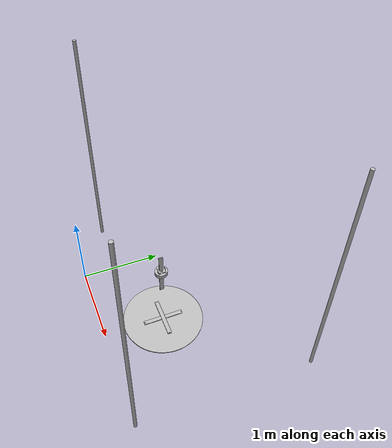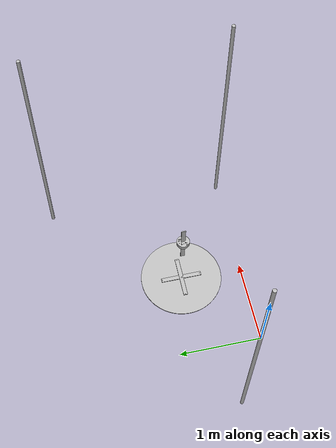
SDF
<?xml version="1.0" ?>
<sdf version="1.6">
	<model name="theClaw">
		<link name="theClaw">
			<self_collide>false</self_collide>
			<pose frame="">0.9961374409318946 0.7465137106501407 0.9145853035421722 0.0 -0.0 0.0</pose>
			<inertial>
				<pose frame="">0.0 0.0 0.0 0 0 0</pose>
				<mass>2.1850906238956522</mass>
				<inertia>
					<ixx>3.0499605924633575</ixx>
					<ixy>-1.6249506698617342</ixy>
					<ixz>-1.4915860235354594</ixz>
					<iyy>4.00041051149521</iyy>
					<iyz>-1.9908220858218477</iyz>
					<izz>3.3913989680828767</izz>
				</inertia>
			</inertial>
			<collision name="theClaw_collision">
				<geometry>
					<mesh>
						<uri>model://theClaw/meshes/CAD/theClaw.stl</uri>
						<scale>0.001 0.001 0.001</scale>
					</mesh>
				</geometry>
			</collision>
			<visual name="theClaw_visual">
				<geometry>
					<mesh>
						<uri>model://theClaw/meshes/CAD/theClaw.stl</uri>
						<scale>0.001 0.001 0.001</scale>
					</mesh>
				</geometry>
			</visual>
		</link>
		<link name="base">
			<self_collide>false</self_collide>
			<pose frame="">1.2271690794387753 0.87 0.0 0.0 -0.0 0.0</pose>
			<inertial>
				<pose frame="">0.0 0.0 0.0 0 0 0</pose>
				<mass>150.43516421714438</mass>
				<inertia>
					<ixx>451.0022383783446</ixx>
					<ixy>-179.0291338501403</ixy>
					<ixz>-116.09093953388212</ixz>
					<iyy>633.607548598436</iyy>
					<iyz>-163.73296758724786</iyz>
					<izz>551.9172263837241</izz>
				</inertia>
			</inertial>
			<collision name="base_collision">
				<geometry>
					<mesh>
						<uri>model://theClaw/meshes/CAD/base.stl</uri>
						<scale>0.001 0.001 0.001</scale>
					</mesh>
				</geometry>
			</collision>
			<visual name="base_visual">
				<geometry>
					<mesh>
						<uri>model://theClaw/meshes/CAD/base.stl</uri>
						<scale>0.001 0.001 0.001</scale>
					</mesh>
				</geometry>
			</visual>
		</link>
		<link name="link2">
			<self_collide>false</self_collide>
			<pose frame="">0.9950000150139188 0.7499959379681213 0.8804603417730599 0.0 -0.0 0.0</pose>
			<inertial>
				<pose frame="">0.0 0.0 0.0 0 0 0</pose>
				<mass>0.3322371208930956</mass>
				<inertia>
					<ixx>0.4528859132012393</ixx>
					<ixy>-0.24793061240442454</ixy>
					<ixz>-0.21939005021271807</ixz>
					<iyy>0.594874622399814</iyy>
					<iyz>-0.2910590052691696</iyz>
					<izz>0.5158734638345004</izz>
				</inertia>
			</inertial>
			<collision name="link2_collision">
				<geometry>
					<mesh>
						<uri>model://theClaw/meshes/CAD/link2.stl</uri>
						<scale>0.001 0.001 0.001</scale>
					</mesh>
				</geometry>
			</collision>
			<visual name="link2_visual">
				<geometry>
					<mesh>
						<uri>model://theClaw/meshes/CAD/link2.stl</uri>
						<scale>0.001 0.001 0.001</scale>
					</mesh>
				</geometry>
			</visual>
		</link>
		<link name="link0">
			<self_collide>false</self_collide>
			<pose frame="">0.9999999999999919 0.7500000000000001 0.015062439533909748 0.0 -0.0 0.0</pose>
			<inertial>
				<pose frame="">0.0 0.0 0.0 0 0 0</pose>
				<mass>0.26666504410640257</mass>
				<inertia>
					<ixx>0.15011719391097655</ixx>
					<ixy>-0.19999878307980032</ixy>
					<ixz>-0.003012469576995049</ixz>
					<iyy>0.27234468224805297</iyy>
					<iyz>-0.004016626102660019</iyz>
					<izz>0.4223361004364948</izz>
				</inertia>
			</inertial>
			<collision name="link0_collision">
				<geometry>
					<mesh>
						<uri>model://theClaw/meshes/CAD/link0.stl</uri>
						<scale>0.001 0.001 0.001</scale>
					</mesh>
				</geometry>
			</collision>
			<visual name="link0_visual">
				<geometry>
					<mesh>
						<uri>model://theClaw/meshes/CAD/link0.stl</uri>
						<scale>0.001 0.001 0.001</scale>
					</mesh>
				</geometry>
			</visual>
		</link>
		<link name="link1">
			<self_collide>false</self_collide>
			<pose frame="">0.9999999999999962 0.7500000000000033 0.015062439533909747 0.0 -0.0 0.0</pose>
			<inertial>
				<pose frame="">0.0 0.0 0.0 0 0 0</pose>
				<mass>0.2666650441064026</mass>
				<inertia>
					<ixx>0.15567872545150593</ixx>
					<ixy>-0.19999878307980196</ixy>
					<ixz>-0.003012469576995067</ixz>
					<iyy>0.26678315070752745</iyy>
					<iyz>-0.004016626102660045</iyz>
					<izz>0.42233610043649855</izz>
				</inertia>
			</inertial>
			<collision name="link1_collision">
				<geometry>
					<mesh>
						<uri>model://theClaw/meshes/CAD/link1.stl</uri>
						<scale>0.001 0.001 0.001</scale>
					</mesh>
				</geometry>
			</collision>
			<visual name="link1_visual">
				<geometry>
					<mesh>
						<uri>model://theClaw/meshes/CAD/link1.stl</uri>
						<scale>0.001 0.001 0.001</scale>
					</mesh>
				</geometry>
			</visual>
		</link>
		<link name="sphere_link1">
			<self_collide>false</self_collide>
			<pose frame="">0.9949999999999998 0.7500000000000009 0.8730000000000014 0.0 -0.0 0.0</pose>
			<inertial>
				<pose frame="">0.0 0.0 0.0 0 0 0</pose>
				<mass>0.04675410312962819</mass>
				<inertia>
					<ixx>0.061937814867289574</ixx>
					<ixy>-0.03489024946048508</ixy>
					<ixz>-0.03061224902412415</ixz>
					<iyy>0.08192636280778379</iyy>
					<iyz>-0.040612250372004666</iyz>
					<izz>0.07259288795411918</izz>
				</inertia>
			</inertial>
			<collision name="sphere_link1_collision">
				<geometry>
					<mesh>
						<uri>model://theClaw/meshes/CAD/sphere_link1.stl</uri>
						<scale>0.001 0.001 0.001</scale>
					</mesh>
				</geometry>
			</collision>
			<visual name="sphere_link1_visual">
				<geometry>
					<mesh>
						<uri>model://theClaw/meshes/CAD/sphere_link1.stl</uri>
						<scale>0.001 0.001 0.001</scale>
					</mesh>
				</geometry>
			</visual>
		</link>
		<link name="sphere_link2">
			<self_collide>false</self_collide>
			<pose frame="">0.9949999999999989 0.7499999999453276 0.8729999999205422 0.0 -0.0 0.0</pose>
			<inertial>
				<pose frame="">0.0 0.0 0.0 0 0 0</pose>
				<mass>0.03134065871089992</mass>
				<inertia>
					<ixx>0.04151744403686321</ixx>
					<ixy>-0.023387966561304308</ixy>
					<ixz>-0.020520296287579034</ixz>
					<iyy>0.05491635915484632</iyy>
					<iyz>-0.027223593076864904</iyz>
					<izz>0.048659854798805274</izz>
				</inertia>
			</inertial>
			<collision name="sphere_link2_collision">
				<geometry>
					<mesh>
						<uri>model://theClaw/meshes/CAD/sphere_link2.stl</uri>
						<scale>0.001 0.001 0.001</scale>
					</mesh>
				</geometry>
			</collision>
			<visual name="sphere_link2_visual">
				<geometry>
					<mesh>
						<uri>model://theClaw/meshes/CAD/sphere_link2.stl</uri>
						<scale>0.001 0.001 0.001</scale>
					</mesh>
				</geometry>
			</visual>
		</link>
		<joint name="joint0" type="prismatic">
			<parent>base</parent>
			<child>link0</child>
			<pose frame="">8.100187187665143e-15 -1.4210854715202004e-16 -0.005062439533909748 0 0 0</pose>
			<axis>
				<xyz>1.0 0.0 0.0</xyz>
				<limit>
					<lower>-1.7</lower>
					<upper>1.2</upper>
				</limit>
				<use_parent_model_frame>0</use_parent_model_frame>
			</axis>
		</joint>
		<joint name="joint1" type="prismatic">
			<parent>link0</parent>
			<child>link1</child>
			<pose frame="">3.836930773104541e-15 -3.268496584496461e-15 0.004937560466090254 0 0 0</pose>
			<axis>
				<xyz>0.0 -1.0 0.0</xyz>
				<limit>
					<lower>-1.05</lower>
					<upper>0.7</upper>
				</limit>
				<use_parent_model_frame>0</use_parent_model_frame>
			</axis>
		</joint>
		<joint name="joint2" type="prismatic">
			<parent>link1</parent>
			<child>link2</child>
			<pose frame="">0.004999984986080506 4.06203187878873e-06 -0.8604603417730599 0 0 0</pose>
			<axis>
				<xyz>1.7516230804060208e-46 6.123233995736767e-17 1.0</xyz>
				<limit>
					<lower>0.9</lower>
					<upper>2.7</upper>
				</limit>
				<use_parent_model_frame>0</use_parent_model_frame>
			</axis>
		</joint>
		<joint name="sphere_axis0" type="revolute">
			<parent>link2</parent>
			<child>sphere_link1</child>
			<pose frame="">-7.105427357601002e-16 -1.4210854715202004e-16 -9.947598300641404e-16 0 0 0</pose>
			<axis>
				<xyz>0.9999999999999991 -6.716849298982185e-15 2.105926602316762e-30</xyz>
				<limit>
					<lower>-3.141592653589793</lower>
					<upper>3.141592653589793</upper>
				</limit>
				<use_parent_model_frame>0</use_parent_model_frame>
			</axis>
		</joint>
		<joint name="sphere_axis2" type="revolute">
			<parent>sphere_link2</parent>
			<child>theClaw</child>
			<pose frame="">-0.0011374409318953838 0.003486289349859817 -0.041585303542172054 0 0 0</pose>
			<axis>
				<xyz>-3.503246160812043e-46 3.1675370922415445e-16 0.9999999999999991</xyz>
				<limit>
					<lower>-3.141592653589793</lower>
					<upper>3.141592653589793</upper>
				</limit>
				<use_parent_model_frame>0</use_parent_model_frame>
			</axis>
		</joint>
		<joint name="sphere_axis1" type="revolute">
			<parent>sphere_link1</parent>
			<child>sphere_link2</child>
			<pose frame="">8.526512829121202e-16 5.467313712870237e-11 7.945899938022194e-11 0 0 0</pose>
			<axis>
				<xyz>-6.716849298982191e-15 -1.0 3.1675370922415475e-16</xyz>
				<limit>
					<lower>-3.141592653589793</lower>
					<upper>3.141592653589793</upper>
				</limit>
				<use_parent_model_frame>0</use_parent_model_frame>
			</axis>
		</joint>
		<plugin filename="libmusc_plugin.so" name="musc_plugin"/>
	</model>
</sdf>
